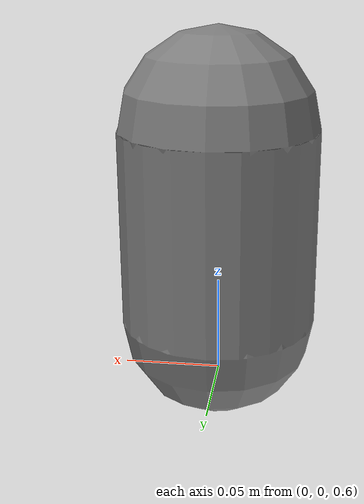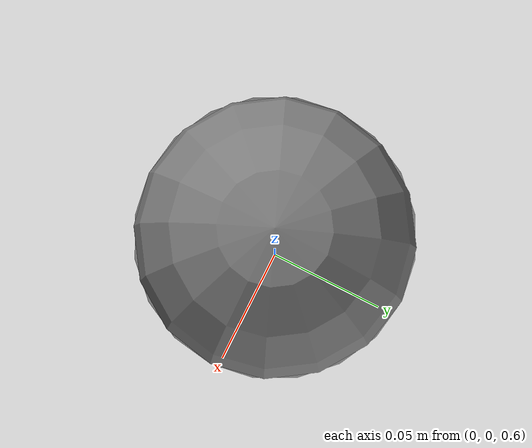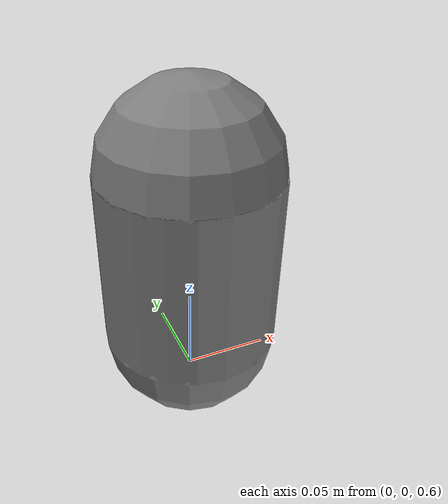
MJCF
<mujoco model="AsimovFixture">
  <compiler angle="radian" meshdir="../assets/meshes"/>
  <asset>
    <mesh name="left_hip_pitch_link.STL" file="LEFT_HIP_PITCH.STL"/>
    <mesh name="right_elbow_link.STL" file="RIGHT_ELBOW.STL"/>
  </asset>
  <worldbody>
    <body name="pelvis_link" pos="0 0 0.63">
      <freejoint name="floating_base"/>
      <site name="imu_in_pelvis" pos="0 0 0"/>
      <inertial mass="3.0" pos="0 0 0" fullinertia="1 1 1 0 0 0"/>
      <geom name="pelvis_collision" type="capsule" fromto="0 0 0 0 0 0.1" size="0.05"/>
      <body name="left_hip_pitch_link" pos="0 0 0">
        <joint name="left_hip_pitch_joint" type="hinge" ref="0.25" range="-1 1" axis="0 1 0"/>
        <inertial mass="1.5" pos="0 0 0" fullinertia="1 1 1 0 0 0"/>
        <geom name="left_hip_pitch_visual" type="mesh" mesh="left_hip_pitch_link.STL"/>
      </body>
      <body name="right_elbow_link" pos="0 0 0">
        <joint name="right_elbow_joint" type="hinge" ref="-0.5" range="-2 0" axis="0 1 0"/>
        <inertial mass="0.5" pos="0 0 0" fullinertia="1 1 1 0 0 0"/>
        <geom name="right_elbow_visual" type="mesh" mesh="right_elbow_link.STL"/>
      </body>
      <camera name="front_camera" mode="track" pos="2 0 1" quat="1 0 0 0" fovy="60"/>
    </body>
  </worldbody>
  <actuator>
    <motor name="left_hip_pitch" joint="left_hip_pitch_joint" ctrlrange="-10 10"/>
  </actuator>
  <sensor>
    <gyro name="imu_ang_vel" site="imu_in_pelvis"/>
    <subtreeangmom name="root_angmom" body="pelvis_link"/>
  </sensor>
</mujoco>
